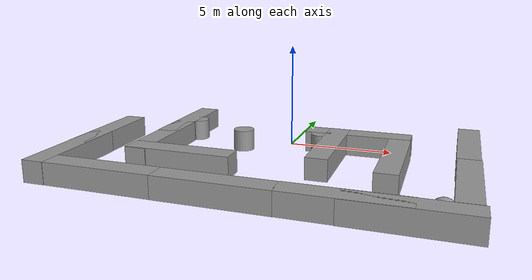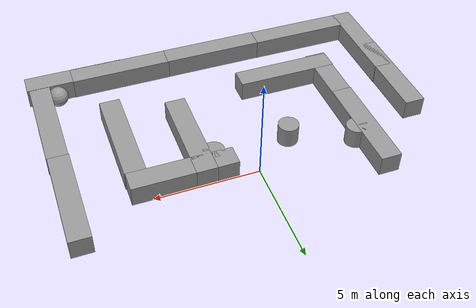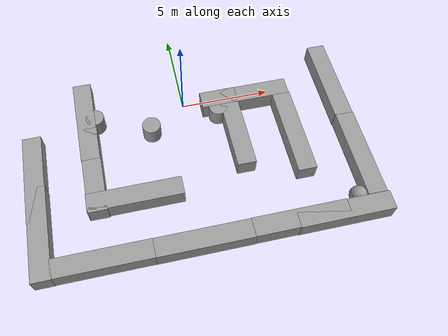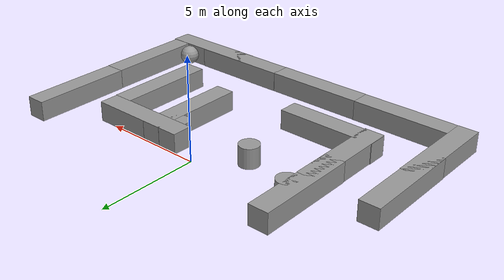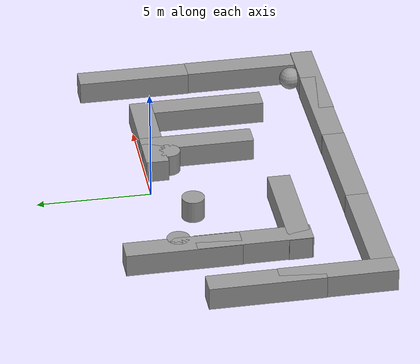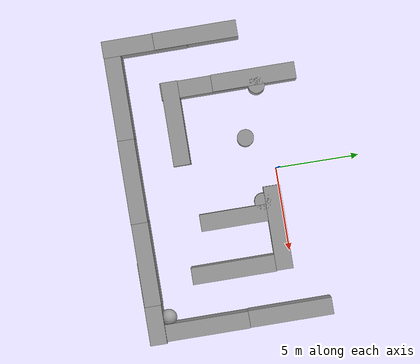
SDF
<sdf version="1.7">
 <model name="turtlebot3_world">
  <link name="link_0">
   <inertial>
    <mass>1</mass>
    <inertia><ixx>0.145833</ixx><ixy>0</ixy><ixz>0</ixz><iyy>0.145833</iyy><iyz>0</iyz><izz>0.125</izz></inertia>
   </inertial>
   <pose>-2.04016 -1.52743 0.5 0 -0 0</pose>
   <visual name="visual">
    <geometry><cylinder><radius>0.5</radius><length>1</length></cylinder></geometry>
    <material>
     <lighting>1</lighting>
     <script><uri>file://media/materials/scripts/gazebo.material</uri><name>Gazebo/Grey</name></script>
     <shader type="pixel"/>
    </material>
   </visual>
   <collision name="collision">
    <geometry><cylinder><radius>0.5</radius><length>1</length></cylinder></geometry>
    <surface>
     <friction>
      <ode><mu>1</mu><mu2>1</mu2><fdir1>0 0 0</fdir1><slip1>0</slip1><slip2>0</slip2></ode>
      <torsional>
       <coefficient>1</coefficient>
       <patch_radius>0</patch_radius>
       <surface_radius>0</surface_radius>
       <use_patch_radius>1</use_patch_radius>
       <ode><slip>0</slip></ode>
      </torsional>
     </friction>
     <bounce><restitution_coefficient>0</restitution_coefficient><threshold>1e+06</threshold></bounce>
     <contact>
      <collide_without_contact>0</collide_without_contact>
      <collide_without_contact_bitmask>1</collide_without_contact_bitmask>
      <collide_bitmask>1</collide_bitmask>
      <ode>
       <soft_cfm>0</soft_cfm>
       <soft_erp>0.2</soft_erp>
       <kp>1e+13</kp>
       <kd>1</kd>
       <max_vel>0.01</max_vel>
       <min_depth>0</min_depth>
      </ode>
      <bullet>
       <split_impulse>1</split_impulse>
       <split_impulse_penetration_threshold>-0.01</split_impulse_penetration_threshold>
       <soft_cfm>0</soft_cfm>
       <soft_erp>0.2</soft_erp>
       <kp>1e+13</kp>
       <kd>1</kd>
      </bullet>
     </contact>
    </surface>
   </collision>
  </link>
  <link name="link_3">
   <inertial>
    <mass>1</mass>
    <inertia><ixx>0.145833</ixx><ixy>0</ixy><ixz>0</ixz><iyy>0.145833</iyy><iyz>0</iyz><izz>0.125</izz></inertia>
   </inertial>
   <pose>1.81796 -1.11314 0.5 0 -0 0</pose>
   <visual name="visual">
    <geometry><cylinder><radius>0.5</radius><length>1</length></cylinder></geometry>
    <material>
     <lighting>1</lighting>
     <script><uri>file://media/materials/scripts/gazebo.material</uri><name>Gazebo/Grey</name></script>
     <shader type="pixel"/>
    </material>
   </visual>
   <collision name="collision">
    <geometry><cylinder><radius>0.5</radius><length>1</length></cylinder></geometry>
    <surface>
     <friction>
      <ode><mu>1</mu><mu2>1</mu2><fdir1>0 0 0</fdir1><slip1>0</slip1><slip2>0</slip2></ode>
      <torsional>
       <coefficient>1</coefficient>
       <patch_radius>0</patch_radius>
       <surface_radius>0</surface_radius>
       <use_patch_radius>1</use_patch_radius>
       <ode><slip>0</slip></ode>
      </torsional>
     </friction>
     <bounce><restitution_coefficient>0</restitution_coefficient><threshold>1e+06</threshold></bounce>
     <contact>
      <collide_without_contact>0</collide_without_contact>
      <collide_without_contact_bitmask>1</collide_without_contact_bitmask>
      <collide_bitmask>1</collide_bitmask>
      <ode>
       <soft_cfm>0</soft_cfm>
       <soft_erp>0.2</soft_erp>
       <kp>1e+13</kp>
       <kd>1</kd>
       <max_vel>0.01</max_vel>
       <min_depth>0</min_depth>
      </ode>
      <bullet>
       <split_impulse>1</split_impulse>
       <split_impulse_penetration_threshold>-0.01</split_impulse_penetration_threshold>
       <soft_cfm>0</soft_cfm>
       <soft_erp>0.2</soft_erp>
       <kp>1e+13</kp>
       <kd>1</kd>
      </bullet>
     </contact>
    </surface>
   </collision>
  </link>
  <link name="link_5">
   <inertial>
    <mass>1</mass>
    <inertia><ixx>0.1</ixx><ixy>0</ixy><ixz>0</ixz><iyy>0.1</iyy><iyz>0</iyz><izz>0.1</izz></inertia>
   </inertial>
   <pose>7.73155 -7.74781 0.5 0 -0 0</pose>
   <visual name="visual">
    <geometry><sphere><radius>0.5</radius></sphere></geometry>
    <material>
     <lighting>1</lighting>
     <script><uri>file://media/materials/scripts/gazebo.material</uri><name>Gazebo/Grey</name></script>
     <shader type="pixel"/>
    </material>
   </visual>
   <collision name="collision">
    <geometry><sphere><radius>0.5</radius></sphere></geometry>
    <surface>
     <friction>
      <ode><mu>1</mu><mu2>1</mu2><fdir1>0 0 0</fdir1><slip1>0</slip1><slip2>0</slip2></ode>
      <torsional>
       <coefficient>1</coefficient>
       <patch_radius>0</patch_radius>
       <surface_radius>0</surface_radius>
       <use_patch_radius>1</use_patch_radius>
       <ode><slip>0</slip></ode>
      </torsional>
     </friction>
     <bounce><restitution_coefficient>0</restitution_coefficient><threshold>1e+06</threshold></bounce>
     <contact>
      <collide_without_contact>0</collide_without_contact>
      <collide_without_contact_bitmask>1</collide_without_contact_bitmask>
      <collide_bitmask>1</collide_bitmask>
      <ode>
       <soft_cfm>0</soft_cfm>
       <soft_erp>0.2</soft_erp>
       <kp>1e+13</kp>
       <kd>1</kd>
       <max_vel>0.01</max_vel>
       <min_depth>0</min_depth>
      </ode>
      <bullet>
       <split_impulse>1</split_impulse>
       <split_impulse_penetration_threshold>-0.01</split_impulse_penetration_threshold>
       <soft_cfm>0</soft_cfm>
       <soft_erp>0.2</soft_erp>
       <kp>1e+13</kp>
       <kd>1</kd>
      </bullet>
     </contact>
    </surface>
   </collision>
  </link>
  <link name="link_8">
   <inertial>
    <mass>1</mass>
    <inertia><ixx>0.145833</ixx><ixy>0</ixy><ixz>0</ixz><iyy>0.145833</iyy><iyz>0</iyz><izz>0.125</izz></inertia>
   </inertial>
   <pose>-5.01755 -0.384631 0.5 0 -0 0</pose>
   <visual name="visual">
    <geometry><cylinder><radius>0.5</radius><length>1</length></cylinder></geometry>
    <material>
     <lighting>1</lighting>
     <script><uri>file://media/materials/scripts/gazebo.material</uri><name>Gazebo/Grey</name></script>
     <shader type="pixel"/>
    </material>
   </visual>
   <collision name="collision">
    <geometry><cylinder><radius>0.5</radius><length>1</length></cylinder></geometry>
    <surface>
     <friction>
      <ode><mu>1</mu><mu2>1</mu2><fdir1>0 0 0</fdir1><slip1>0</slip1><slip2>0</slip2></ode>
      <torsional>
       <coefficient>1</coefficient>
       <patch_radius>0</patch_radius>
       <surface_radius>0</surface_radius>
       <use_patch_radius>1</use_patch_radius>
       <ode><slip>0</slip></ode>
      </torsional>
     </friction>
     <bounce><restitution_coefficient>0</restitution_coefficient><threshold>1e+06</threshold></bounce>
     <contact>
      <collide_without_contact>0</collide_without_contact>
      <collide_without_contact_bitmask>1</collide_without_contact_bitmask>
      <collide_bitmask>1</collide_bitmask>
      <ode>
       <soft_cfm>0</soft_cfm>
       <soft_erp>0.2</soft_erp>
       <kp>1e+13</kp>
       <kd>1</kd>
       <max_vel>0.01</max_vel>
       <min_depth>0</min_depth>
      </ode>
      <bullet>
       <split_impulse>1</split_impulse>
       <split_impulse_penetration_threshold>-0.01</split_impulse_penetration_threshold>
       <soft_cfm>0</soft_cfm>
       <soft_erp>0.2</soft_erp>
       <kp>1e+13</kp>
       <kd>1</kd>
      </bullet>
     </contact>
    </surface>
   </collision>
  </link>
  <link name="turtlebot3_world::link_1_clone_0">
   <inertial>
    <mass>4.98343</mass>
    <inertia><ixx>10.7287</ixx><ixy>0</ixy><ixz>0</ixz><iyy>0.830571</iyy><iyz>0</iyz><izz>10.7287</izz></inertia>
   </inertial>
   <pose>-8.5021 -3.47749 0.5 0 -0 0</pose>
   <visual name="visual">
    <geometry><box><size>1 4.98342 1</size></box></geometry>
    <material>
     <lighting>1</lighting>
     <script><uri>file://media/materials/scripts/gazebo.material</uri><name>Gazebo/Grey</name></script>
     <shader type="pixel"/>
    </material>
   </visual>
   <collision name="collision">
    <geometry><box><size>1 4.98342 1</size></box></geometry>
    <surface>
     <friction>
      <ode><mu>1</mu><mu2>1</mu2><fdir1>0 0 0</fdir1><slip1>0</slip1><slip2>0</slip2></ode>
      <torsional>
       <coefficient>1</coefficient>
       <patch_radius>0</patch_radius>
       <surface_radius>0</surface_radius>
       <use_patch_radius>1</use_patch_radius>
       <ode><slip>0</slip></ode>
      </torsional>
     </friction>
     <bounce><restitution_coefficient>0</restitution_coefficient><threshold>1e+06</threshold></bounce>
     <contact>
      <collide_without_contact>0</collide_without_contact>
      <collide_without_contact_bitmask>1</collide_without_contact_bitmask>
      <collide_bitmask>1</collide_bitmask>
      <ode>
       <soft_cfm>0</soft_cfm>
       <soft_erp>0.2</soft_erp>
       <kp>1e+13</kp>
       <kd>1</kd>
       <max_vel>0.01</max_vel>
       <min_depth>0</min_depth>
      </ode>
      <bullet>
       <split_impulse>1</split_impulse>
       <split_impulse_penetration_threshold>-0.01</split_impulse_penetration_threshold>
       <soft_cfm>0</soft_cfm>
       <soft_erp>0.2</soft_erp>
       <kp>1e+13</kp>
       <kd>1</kd>
      </bullet>
     </contact>
    </surface>
   </collision>
  </link>
  <link name="turtlebot3_world::link_1_clone_1">
   <inertial>
    <mass>4.98343</mass>
    <inertia><ixx>10.7287</ixx><ixy>0</ixy><ixz>0</ixz><iyy>0.830571</iyy><iyz>0</iyz><izz>10.7287</izz></inertia>
   </inertial>
   <pose>-8.48256 -6.51074 0.5 0 -0 0</pose>
   <visual name="visual">
    <geometry><box><size>1 4.98342 1</size></box></geometry>
    <material>
     <lighting>1</lighting>
     <script><uri>file://media/materials/scripts/gazebo.material</uri><name>Gazebo/Grey</name></script>
     <shader type="pixel"/>
    </material>
   </visual>
   <collision name="collision">
    <geometry><box><size>1 4.98342 1</size></box></geometry>
    <surface>
     <friction>
      <ode><mu>1</mu><mu2>1</mu2><fdir1>0 0 0</fdir1><slip1>0</slip1><slip2>0</slip2></ode>
      <torsional>
       <coefficient>1</coefficient>
       <patch_radius>0</patch_radius>
       <surface_radius>0</surface_radius>
       <use_patch_radius>1</use_patch_radius>
       <ode><slip>0</slip></ode>
      </torsional>
     </friction>
     <bounce><restitution_coefficient>0</restitution_coefficient><threshold>1e+06</threshold></bounce>
     <contact>
      <collide_without_contact>0</collide_without_contact>
      <collide_without_contact_bitmask>1</collide_without_contact_bitmask>
      <collide_bitmask>1</collide_bitmask>
      <ode>
       <soft_cfm>0</soft_cfm>
       <soft_erp>0.2</soft_erp>
       <kp>1e+13</kp>
       <kd>1</kd>
       <max_vel>0.01</max_vel>
       <min_depth>0</min_depth>
      </ode>
      <bullet>
       <split_impulse>1</split_impulse>
       <split_impulse_penetration_threshold>-0.01</split_impulse_penetration_threshold>
       <soft_cfm>0</soft_cfm>
       <soft_erp>0.2</soft_erp>
       <kp>1e+13</kp>
       <kd>1</kd>
      </bullet>
     </contact>
    </surface>
   </collision>
  </link>
  <link name="turtlebot3_world::link_1_clone_1_clone">
   <inertial>
    <mass>4.98343</mass>
    <inertia><ixx>10.7287</ixx><ixy>0</ixy><ixz>0</ixz><iyy>0.830571</iyy><iyz>0</iyz><izz>10.7287</izz></inertia>
   </inertial>
   <pose>8.55507 -5.5221 0.5 0 -0 0</pose>
   <visual name="visual">
    <geometry><box><size>1 4.98342 1</size></box></geometry>
    <material>
     <lighting>1</lighting>
     <script><uri>file://media/materials/scripts/gazebo.material</uri><name>Gazebo/Grey</name></script>
     <shader type="pixel"/>
    </material>
   </visual>
   <collision name="collision">
    <geometry><box><size>1 4.98342 1</size></box></geometry>
    <surface>
     <friction>
      <ode><mu>1</mu><mu2>1</mu2><fdir1>0 0 0</fdir1><slip1>0</slip1><slip2>0</slip2></ode>
      <torsional>
       <coefficient>1</coefficient>
       <patch_radius>0</patch_radius>
       <surface_radius>0</surface_radius>
       <use_patch_radius>1</use_patch_radius>
       <ode><slip>0</slip></ode>
      </torsional>
     </friction>
     <bounce><restitution_coefficient>0</restitution_coefficient><threshold>1e+06</threshold></bounce>
     <contact>
      <collide_without_contact>0</collide_without_contact>
      <collide_without_contact_bitmask>1</collide_without_contact_bitmask>
      <collide_bitmask>1</collide_bitmask>
      <ode>
       <soft_cfm>0</soft_cfm>
       <soft_erp>0.2</soft_erp>
       <kp>1e+13</kp>
       <kd>1</kd>
       <max_vel>0.01</max_vel>
       <min_depth>0</min_depth>
      </ode>
      <bullet>
       <split_impulse>1</split_impulse>
       <split_impulse_penetration_threshold>-0.01</split_impulse_penetration_threshold>
       <soft_cfm>0</soft_cfm>
       <soft_erp>0.2</soft_erp>
       <kp>1e+13</kp>
       <kd>1</kd>
      </bullet>
     </contact>
    </surface>
   </collision>
  </link>
  <link name="turtlebot3_world::link_1_clone_1_clone_0">
   <inertial>
    <mass>4.98343</mass>
    <inertia><ixx>10.7287</ixx><ixy>0</ixy><ixz>0</ixz><iyy>0.830571</iyy><iyz>0</iyz><izz>10.7287</izz></inertia>
   </inertial>
   <pose>8.52926 -0.553425 0.5 0 -0 0</pose>
   <visual name="visual">
    <geometry><box><size>1 4.98342 1</size></box></geometry>
    <material>
     <lighting>1</lighting>
     <script><uri>file://media/materials/scripts/gazebo.material</uri><name>Gazebo/Grey</name></script>
     <shader type="pixel"/>
    </material>
   </visual>
   <collision name="collision">
    <geometry><box><size>1 4.98342 1</size></box></geometry>
    <surface>
     <friction>
      <ode><mu>1</mu><mu2>1</mu2><fdir1>0 0 0</fdir1><slip1>0</slip1><slip2>0</slip2></ode>
      <torsional>
       <coefficient>1</coefficient>
       <patch_radius>0</patch_radius>
       <surface_radius>0</surface_radius>
       <use_patch_radius>1</use_patch_radius>
       <ode><slip>0</slip></ode>
      </torsional>
     </friction>
     <bounce><restitution_coefficient>0</restitution_coefficient><threshold>1e+06</threshold></bounce>
     <contact>
      <collide_without_contact>0</collide_without_contact>
      <collide_without_contact_bitmask>1</collide_without_contact_bitmask>
      <collide_bitmask>1</collide_bitmask>
      <ode>
       <soft_cfm>0</soft_cfm>
       <soft_erp>0.2</soft_erp>
       <kp>1e+13</kp>
       <kd>1</kd>
       <max_vel>0.01</max_vel>
       <min_depth>0</min_depth>
      </ode>
      <bullet>
       <split_impulse>1</split_impulse>
       <split_impulse_penetration_threshold>-0.01</split_impulse_penetration_threshold>
       <soft_cfm>0</soft_cfm>
       <soft_erp>0.2</soft_erp>
       <kp>1e+13</kp>
       <kd>1</kd>
      </bullet>
     </contact>
    </surface>
   </collision>
  </link>
  <link name="turtlebot3_world::link_1_clone_2">
   <inertial>
    <mass>4.98343</mass>
    <inertia><ixx>10.7287</ixx><ixy>0</ixy><ixz>0</ixz><iyy>0.830571</iyy><iyz>0</iyz><izz>10.7287</izz></inertia>
   </inertial>
   <pose>-5.5431 -8.49183 0.5 0 -0 1.56958</pose>
   <visual name="visual">
    <geometry><box><size>1 4.98342 1</size></box></geometry>
    <material>
     <lighting>1</lighting>
     <script><uri>file://media/materials/scripts/gazebo.material</uri><name>Gazebo/Grey</name></script>
     <shader type="pixel"/>
    </material>
   </visual>
   <collision name="collision">
    <geometry><box><size>1 4.98342 1</size></box></geometry>
    <surface>
     <friction>
      <ode><mu>1</mu><mu2>1</mu2><fdir1>0 0 0</fdir1><slip1>0</slip1><slip2>0</slip2></ode>
      <torsional>
       <coefficient>1</coefficient>
       <patch_radius>0</patch_radius>
       <surface_radius>0</surface_radius>
       <use_patch_radius>1</use_patch_radius>
       <ode><slip>0</slip></ode>
      </torsional>
     </friction>
     <bounce><restitution_coefficient>0</restitution_coefficient><threshold>1e+06</threshold></bounce>
     <contact>
      <collide_without_contact>0</collide_without_contact>
      <collide_without_contact_bitmask>1</collide_without_contact_bitmask>
      <collide_bitmask>1</collide_bitmask>
      <ode>
       <soft_cfm>0</soft_cfm>
       <soft_erp>0.2</soft_erp>
       <kp>1e+13</kp>
       <kd>1</kd>
       <max_vel>0.01</max_vel>
       <min_depth>0</min_depth>
      </ode>
      <bullet>
       <split_impulse>1</split_impulse>
       <split_impulse_penetration_threshold>-0.01</split_impulse_penetration_threshold>
       <soft_cfm>0</soft_cfm>
       <soft_erp>0.2</soft_erp>
       <kp>1e+13</kp>
       <kd>1</kd>
      </bullet>
     </contact>
    </surface>
   </collision>
  </link>
  <link name="turtlebot3_world::link_1_clone_2_clone">
   <inertial>
    <mass>4.98343</mass>
    <inertia><ixx>10.7287</ixx><ixy>0</ixy><ixz>0</ixz><iyy>0.830571</iyy><iyz>0</iyz><izz>10.7287</izz></inertia>
   </inertial>
   <pose>-0.572275 -8.50763 0.5 0 -0 1.56958</pose>
   <visual name="visual">
    <geometry><box><size>1 4.98342 1</size></box></geometry>
    <material>
     <lighting>1</lighting>
     <script><uri>file://media/materials/scripts/gazebo.material</uri><name>Gazebo/Grey</name></script>
     <shader type="pixel"/>
    </material>
   </visual>
   <collision name="collision">
    <geometry><box><size>1 4.98342 1</size></box></geometry>
    <surface>
     <friction>
      <ode><mu>1</mu><mu2>1</mu2><fdir1>0 0 0</fdir1><slip1>0</slip1><slip2>0</slip2></ode>
      <torsional>
       <coefficient>1</coefficient>
       <patch_radius>0</patch_radius>
       <surface_radius>0</surface_radius>
       <use_patch_radius>1</use_patch_radius>
       <ode><slip>0</slip></ode>
      </torsional>
     </friction>
     <bounce><restitution_coefficient>0</restitution_coefficient><threshold>1e+06</threshold></bounce>
     <contact>
      <collide_without_contact>0</collide_without_contact>
      <collide_without_contact_bitmask>1</collide_without_contact_bitmask>
      <collide_bitmask>1</collide_bitmask>
      <ode>
       <soft_cfm>0</soft_cfm>
       <soft_erp>0.2</soft_erp>
       <kp>1e+13</kp>
       <kd>1</kd>
       <max_vel>0.01</max_vel>
       <min_depth>0</min_depth>
      </ode>
      <bullet>
       <split_impulse>1</split_impulse>
       <split_impulse_penetration_threshold>-0.01</split_impulse_penetration_threshold>
       <soft_cfm>0</soft_cfm>
       <soft_erp>0.2</soft_erp>
       <kp>1e+13</kp>
       <kd>1</kd>
      </bullet>
     </contact>
    </surface>
   </collision>
  </link>
  <link name="turtlebot3_world::link_1_clone_2_clone_0">
   <inertial>
    <mass>4.98343</mass>
    <inertia><ixx>10.7287</ixx><ixy>0</ixy><ixz>0</ixz><iyy>0.830571</iyy><iyz>0</iyz><izz>10.7287</izz></inertia>
   </inertial>
   <pose>4.36935 -8.50175 0.5 0 -0 1.56958</pose>
   <visual name="visual">
    <geometry><box><size>1 4.98342 1</size></box></geometry>
    <material>
     <lighting>1</lighting>
     <script><uri>file://media/materials/scripts/gazebo.material</uri><name>Gazebo/Grey</name></script>
     <shader type="pixel"/>
    </material>
   </visual>
   <collision name="collision">
    <geometry><box><size>1 4.98342 1</size></box></geometry>
    <surface>
     <friction>
      <ode><mu>1</mu><mu2>1</mu2><fdir1>0 0 0</fdir1><slip1>0</slip1><slip2>0</slip2></ode>
      <torsional>
       <coefficient>1</coefficient>
       <patch_radius>0</patch_radius>
       <surface_radius>0</surface_radius>
       <use_patch_radius>1</use_patch_radius>
       <ode><slip>0</slip></ode>
      </torsional>
     </friction>
     <bounce><restitution_coefficient>0</restitution_coefficient><threshold>1e+06</threshold></bounce>
     <contact>
      <collide_without_contact>0</collide_without_contact>
      <collide_without_contact_bitmask>1</collide_without_contact_bitmask>
      <collide_bitmask>1</collide_bitmask>
      <ode>
       <soft_cfm>0</soft_cfm>
       <soft_erp>0.2</soft_erp>
       <kp>1e+13</kp>
       <kd>1</kd>
       <max_vel>0.01</max_vel>
       <min_depth>0</min_depth>
      </ode>
      <bullet>
       <split_impulse>1</split_impulse>
       <split_impulse_penetration_threshold>-0.01</split_impulse_penetration_threshold>
       <soft_cfm>0</soft_cfm>
       <soft_erp>0.2</soft_erp>
       <kp>1e+13</kp>
       <kd>1</kd>
      </bullet>
     </contact>
    </surface>
   </collision>
  </link>
  <link name="turtlebot3_world::link_1_clone_2_clone_1">
   <inertial>
    <mass>4.98343</mass>
    <inertia><ixx>10.7287</ixx><ixy>0</ixy><ixz>0</ixz><iyy>0.830571</iyy><iyz>0</iyz><izz>10.7287</izz></inertia>
   </inertial>
   <pose>6.66404 -8.52526 0.5 0 -0 1.56958</pose>
   <visual name="visual">
    <geometry><box><size>1 4.98342 1</size></box></geometry>
    <material>
     <lighting>1</lighting>
     <script><uri>file://media/materials/scripts/gazebo.material</uri><name>Gazebo/Grey</name></script>
     <shader type="pixel"/>
    </material>
   </visual>
   <collision name="collision">
    <geometry><box><size>1 4.98342 1</size></box></geometry>
    <surface>
     <friction>
      <ode><mu>1</mu><mu2>1</mu2><fdir1>0 0 0</fdir1><slip1>0</slip1><slip2>0</slip2></ode>
      <torsional>
       <coefficient>1</coefficient>
       <patch_radius>0</patch_radius>
       <surface_radius>0</surface_radius>
       <use_patch_radius>1</use_patch_radius>
       <ode><slip>0</slip></ode>
      </torsional>
     </friction>
     <bounce><restitution_coefficient>0</restitution_coefficient><threshold>1e+06</threshold></bounce>
     <contact>
      <collide_without_contact>0</collide_without_contact>
      <collide_without_contact_bitmask>1</collide_without_contact_bitmask>
      <collide_bitmask>1</collide_bitmask>
      <ode>
       <soft_cfm>0</soft_cfm>
       <soft_erp>0.2</soft_erp>
       <kp>1e+13</kp>
       <kd>1</kd>
       <max_vel>0.01</max_vel>
       <min_depth>0</min_depth>
      </ode>
      <bullet>
       <split_impulse>1</split_impulse>
       <split_impulse_penetration_threshold>-0.01</split_impulse_penetration_threshold>
       <soft_cfm>0</soft_cfm>
       <soft_erp>0.2</soft_erp>
       <kp>1e+13</kp>
       <kd>1</kd>
      </bullet>
     </contact>
    </surface>
   </collision>
  </link>
  <link name="turtlebot3_world::link_1_clone_2_clone_1_clone_6_clone">
   <inertial>
    <mass>4.98343</mass>
    <inertia><ixx>10.7287</ixx><ixy>0</ixy><ixz>0</ixz><iyy>0.830571</iyy><iyz>0</iyz><izz>10.7287</izz></inertia>
   </inertial>
   <pose>-3.52985 -5.46029 0.5 0 -0 1.56958</pose>
   <visual name="visual">
    <geometry><box><size>1 4.98342 1</size></box></geometry>
    <material>
     <lighting>1</lighting>
     <script><uri>file://media/materials/scripts/gazebo.material</uri><name>Gazebo/Grey</name></script>
     <shader type="pixel"/>
    </material>
   </visual>
   <collision name="collision">
    <geometry><box><size>1 4.98342 1</size></box></geometry>
    <surface>
     <friction>
      <ode><mu>1</mu><mu2>1</mu2><fdir1>0 0 0</fdir1><slip1>0</slip1><slip2>0</slip2></ode>
      <torsional>
       <coefficient>1</coefficient>
       <patch_radius>0</patch_radius>
       <surface_radius>0</surface_radius>
       <use_patch_radius>1</use_patch_radius>
       <ode><slip>0</slip></ode>
      </torsional>
     </friction>
     <bounce><restitution_coefficient>0</restitution_coefficient><threshold>1e+06</threshold></bounce>
     <contact>
      <collide_without_contact>0</collide_without_contact>
      <collide_without_contact_bitmask>1</collide_without_contact_bitmask>
      <collide_bitmask>1</collide_bitmask>
      <ode>
       <soft_cfm>0</soft_cfm>
       <soft_erp>0.2</soft_erp>
       <kp>1e+13</kp>
       <kd>1</kd>
       <max_vel>0.01</max_vel>
       <min_depth>0</min_depth>
      </ode>
      <bullet>
       <split_impulse>1</split_impulse>
       <split_impulse_penetration_threshold>-0.01</split_impulse_penetration_threshold>
       <soft_cfm>0</soft_cfm>
       <soft_erp>0.2</soft_erp>
       <kp>1e+13</kp>
       <kd>1</kd>
      </bullet>
     </contact>
    </surface>
   </collision>
  </link>
  <link name="turtlebot3_world::link_1_clone_2_clone_1_clone_6_clone_0">
   <inertial>
    <mass>4.98343</mass>
    <inertia><ixx>10.7287</ixx><ixy>0</ixy><ixz>0</ixz><iyy>0.830571</iyy><iyz>0</iyz><izz>10.7287</izz></inertia>
   </inertial>
   <pose>3.47747 -0.480553 0.5 0 -0 1.56958</pose>
   <visual name="visual">
    <geometry><box><size>1 4.98342 1</size></box></geometry>
    <material>
     <lighting>1</lighting>
     <script><uri>file://media/materials/scripts/gazebo.material</uri><name>Gazebo/Grey</name></script>
     <shader type="pixel"/>
    </material>
   </visual>
   <collision name="collision">
    <geometry><box><size>1 4.98342 1</size></box></geometry>
    <surface>
     <friction>
      <ode><mu>1</mu><mu2>1</mu2><fdir1>0 0 0</fdir1><slip1>0</slip1><slip2>0</slip2></ode>
      <torsional>
       <coefficient>1</coefficient>
       <patch_radius>0</patch_radius>
       <surface_radius>0</surface_radius>
       <use_patch_radius>1</use_patch_radius>
       <ode><slip>0</slip></ode>
      </torsional>
     </friction>
     <bounce><restitution_coefficient>0</restitution_coefficient><threshold>1e+06</threshold></bounce>
     <contact>
      <collide_without_contact>0</collide_without_contact>
      <collide_without_contact_bitmask>1</collide_without_contact_bitmask>
      <collide_bitmask>1</collide_bitmask>
      <ode>
       <soft_cfm>0</soft_cfm>
       <soft_erp>0.2</soft_erp>
       <kp>1e+13</kp>
       <kd>1</kd>
       <max_vel>0.01</max_vel>
       <min_depth>0</min_depth>
      </ode>
      <bullet>
       <split_impulse>1</split_impulse>
       <split_impulse_penetration_threshold>-0.01</split_impulse_penetration_threshold>
       <soft_cfm>0</soft_cfm>
       <soft_erp>0.2</soft_erp>
       <kp>1e+13</kp>
       <kd>1</kd>
      </bullet>
     </contact>
    </surface>
   </collision>
  </link>
  <link name="turtlebot3_world::link_1_clone_clone">
   <inertial>
    <mass>4.98343</mass>
    <inertia><ixx>10.7287</ixx><ixy>0</ixy><ixz>0</ixz><iyy>0.830571</iyy><iyz>0</iyz><izz>10.7287</izz></inertia>
   </inertial>
   <pose>-5.51904 -0.485674 0.5 0 -0 0</pose>
   <visual name="visual">
    <geometry><box><size>1 4.98342 1</size></box></geometry>
    <material>
     <lighting>1</lighting>
     <script><uri>file://media/materials/scripts/gazebo.material</uri><name>Gazebo/Grey</name></script>
     <shader type="pixel"/>
    </material>
   </visual>
   <collision name="collision">
    <geometry><box><size>1 4.98342 1</size></box></geometry>
    <surface>
     <friction>
      <ode><mu>1</mu><mu2>1</mu2><fdir1>0 0 0</fdir1><slip1>0</slip1><slip2>0</slip2></ode>
      <torsional>
       <coefficient>1</coefficient>
       <patch_radius>0</patch_radius>
       <surface_radius>0</surface_radius>
       <use_patch_radius>1</use_patch_radius>
       <ode><slip>0</slip></ode>
      </torsional>
     </friction>
     <bounce><restitution_coefficient>0</restitution_coefficient><threshold>1e+06</threshold></bounce>
     <contact>
      <collide_without_contact>0</collide_without_contact>
      <collide_without_contact_bitmask>1</collide_without_contact_bitmask>
      <collide_bitmask>1</collide_bitmask>
      <ode>
       <soft_cfm>0</soft_cfm>
       <soft_erp>0.2</soft_erp>
       <kp>1e+13</kp>
       <kd>1</kd>
       <max_vel>0.01</max_vel>
       <min_depth>0</min_depth>
      </ode>
      <bullet>
       <split_impulse>1</split_impulse>
       <split_impulse_penetration_threshold>-0.01</split_impulse_penetration_threshold>
       <soft_cfm>0</soft_cfm>
       <soft_erp>0.2</soft_erp>
       <kp>1e+13</kp>
       <kd>1</kd>
      </bullet>
     </contact>
    </surface>
   </collision>
  </link>
  <link name="turtlebot3_world::link_1_clone_clone_0">
   <inertial>
    <mass>4.98343</mass>
    <inertia><ixx>10.7287</ixx><ixy>0</ixy><ixz>0</ixz><iyy>0.830571</iyy><iyz>0</iyz><izz>10.7287</izz></inertia>
   </inertial>
   <pose>-5.49239 -3.52191 0.5 0 -0 0</pose>
   <visual name="visual">
    <geometry><box><size>1 4.98342 1</size></box></geometry>
    <material>
     <lighting>1</lighting>
     <script><uri>file://media/materials/scripts/gazebo.material</uri><name>Gazebo/Grey</name></script>
     <shader type="pixel"/>
    </material>
   </visual>
   <collision name="collision">
    <geometry><box><size>1 4.98342 1</size></box></geometry>
    <surface>
     <friction>
      <ode><mu>1</mu><mu2>1</mu2><fdir1>0 0 0</fdir1><slip1>0</slip1><slip2>0</slip2></ode>
      <torsional>
       <coefficient>1</coefficient>
       <patch_radius>0</patch_radius>
       <surface_radius>0</surface_radius>
       <use_patch_radius>1</use_patch_radius>
       <ode><slip>0</slip></ode>
      </torsional>
     </friction>
     <bounce><restitution_coefficient>0</restitution_coefficient><threshold>1e+06</threshold></bounce>
     <contact>
      <collide_without_contact>0</collide_without_contact>
      <collide_without_contact_bitmask>1</collide_without_contact_bitmask>
      <collide_bitmask>1</collide_bitmask>
      <ode>
       <soft_cfm>0</soft_cfm>
       <soft_erp>0.2</soft_erp>
       <kp>1e+13</kp>
       <kd>1</kd>
       <max_vel>0.01</max_vel>
       <min_depth>0</min_depth>
      </ode>
      <bullet>
       <split_impulse>1</split_impulse>
       <split_impulse_penetration_threshold>-0.01</split_impulse_penetration_threshold>
       <soft_cfm>0</soft_cfm>
       <soft_erp>0.2</soft_erp>
       <kp>1e+13</kp>
       <kd>1</kd>
      </bullet>
     </contact>
    </surface>
   </collision>
  </link>
  <link name="turtlebot3_world::link_1_clone_clone_0_clone">
   <inertial>
    <mass>4.98343</mass>
    <inertia><ixx>10.7287</ixx><ixy>0</ixy><ixz>0</ixz><iyy>0.830571</iyy><iyz>0</iyz><izz>10.7287</izz></inertia>
   </inertial>
   <pose>2.49851 -2.46456 0.5 0 -0 0</pose>
   <visual name="visual">
    <geometry><box><size>1 4.98341 1</size></box></geometry>
    <material>
     <lighting>1</lighting>
     <script><uri>file://media/materials/scripts/gazebo.material</uri><name>Gazebo/Grey</name></script>
     <shader type="pixel"/>
    </material>
   </visual>
   <collision name="collision">
    <geometry><box><size>1 4.98341 1</size></box></geometry>
    <surface>
     <friction>
      <ode><mu>1</mu><mu2>1</mu2><fdir1>0 0 0</fdir1><slip1>0</slip1><slip2>0</slip2></ode>
      <torsional>
       <coefficient>1</coefficient>
       <patch_radius>0</patch_radius>
       <surface_radius>0</surface_radius>
       <use_patch_radius>1</use_patch_radius>
       <ode><slip>0</slip></ode>
      </torsional>
     </friction>
     <bounce><restitution_coefficient>0</restitution_coefficient><threshold>1e+06</threshold></bounce>
     <contact>
      <collide_without_contact>0</collide_without_contact>
      <collide_without_contact_bitmask>1</collide_without_contact_bitmask>
      <collide_bitmask>1</collide_bitmask>
      <ode>
       <soft_cfm>0</soft_cfm>
       <soft_erp>0.2</soft_erp>
       <kp>1e+13</kp>
       <kd>1</kd>
       <max_vel>0.01</max_vel>
       <min_depth>0</min_depth>
      </ode>
      <bullet>
       <split_impulse>1</split_impulse>
       <split_impulse_penetration_threshold>-0.01</split_impulse_penetration_threshold>
       <soft_cfm>0</soft_cfm>
       <soft_erp>0.2</soft_erp>
       <kp>1e+13</kp>
       <kd>1</kd>
      </bullet>
     </contact>
    </surface>
   </collision>
  </link>
  <link name="turtlebot3_world::link_1_clone_clone_0_clone_0">
   <inertial>
    <mass>4.98343</mass>
    <inertia><ixx>10.7287</ixx><ixy>0</ixy><ixz>0</ixz><iyy>0.830571</iyy><iyz>0</iyz><izz>10.7287</izz></inertia>
   </inertial>
   <pose>5.5062 -3.46313 0.5 0 -0 0</pose>
   <visual name="visual">
    <geometry><box><size>1 4.98342 1</size></box></geometry>
    <material>
     <lighting>1</lighting>
     <script><uri>file://media/materials/scripts/gazebo.material</uri><name>Gazebo/Grey</name></script>
     <shader type="pixel"/>
    </material>
   </visual>
   <collision name="collision">
    <geometry><box><size>1 4.98342 1</size></box></geometry>
    <surface>
     <friction>
      <ode><mu>1</mu><mu2>1</mu2><fdir1>0 0 0</fdir1><slip1>0</slip1><slip2>0</slip2></ode>
      <torsional>
       <coefficient>1</coefficient>
       <patch_radius>0</patch_radius>
       <surface_radius>0</surface_radius>
       <use_patch_radius>1</use_patch_radius>
       <ode><slip>0</slip></ode>
      </torsional>
     </friction>
     <bounce><restitution_coefficient>0</restitution_coefficient><threshold>1e+06</threshold></bounce>
     <contact>
      <collide_without_contact>0</collide_without_contact>
      <collide_without_contact_bitmask>1</collide_without_contact_bitmask>
      <collide_bitmask>1</collide_bitmask>
      <ode>
       <soft_cfm>0</soft_cfm>
       <soft_erp>0.2</soft_erp>
       <kp>1e+13</kp>
       <kd>1</kd>
       <max_vel>0.01</max_vel>
       <min_depth>0</min_depth>
      </ode>
      <bullet>
       <split_impulse>1</split_impulse>
       <split_impulse_penetration_threshold>-0.01</split_impulse_penetration_threshold>
       <soft_cfm>0</soft_cfm>
       <soft_erp>0.2</soft_erp>
       <kp>1e+13</kp>
       <kd>1</kd>
      </bullet>
     </contact>
    </surface>
   </collision>
  </link>
  <static>1</static>
 </model>
</sdf>
